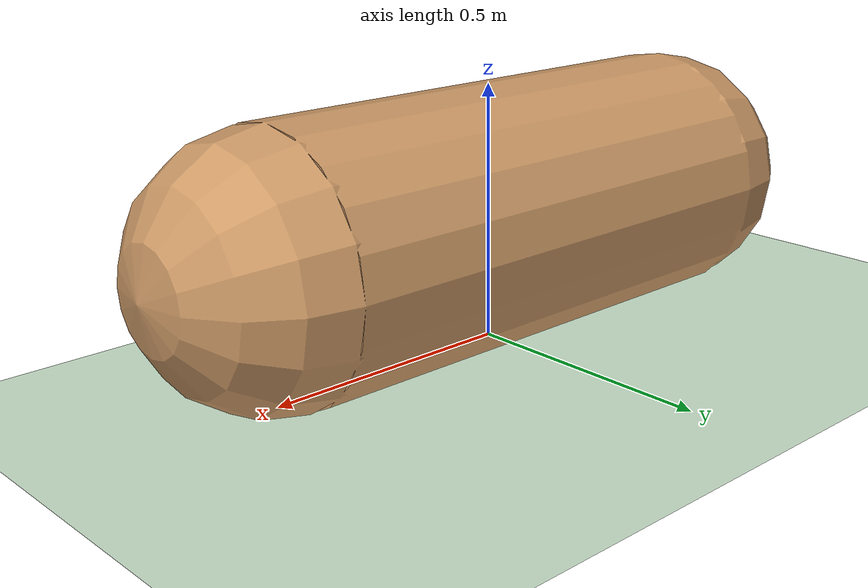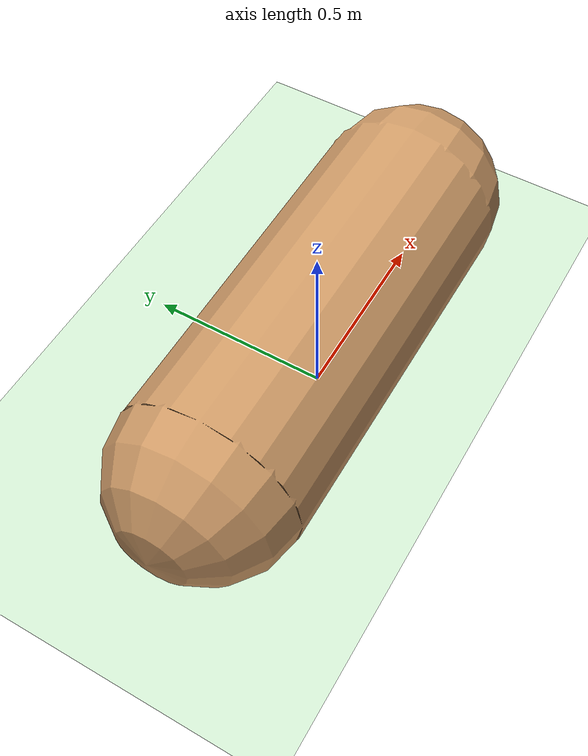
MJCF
<mujoco model="capsule">
  <compiler angle="degree" coordinate="local" inertiafromgeom="true"/>
  <option timestep="0.01" collision="predefined" />
  <custom>
    <numeric data="0.1" name="baumgarte_erp"/>
    <numeric data="0.2" name="elasticity"/>
    <tuple name="elasticity">
       <element objtype="geom" objname="cap1" prm="0.1"/>
    </tuple>
  </custom>
  <default>
    <joint armature="1" damping="1" limited="true"/>
    <geom conaffinity="0" condim="3" density="5.0" friction="1 0.5 0.5" margin="0.01" rgba="0.8 0.6 0.4 1"/>
  </default>
  <worldbody>
    <geom conaffinity="1" condim="3" name="floor" pos="0 0 0" rgba="0.8 0.9 0.8 1" size="40 40 40" type="plane"/>
    <body name="body2" pos="0 0 0.25">
      <joint axis="1 0 0" name="free2" pos="0 0 0" type="free"/>
      <geom name="cap1" fromto="-0.5 0.0 0 0.5 0.0 0" pos="0 0 0" size="0.25" type="capsule"/>
    </body>
  </worldbody>
  <contact>
    <pair geom1="floor" geom2="cap1"/>
  </contact>
</mujoco>
